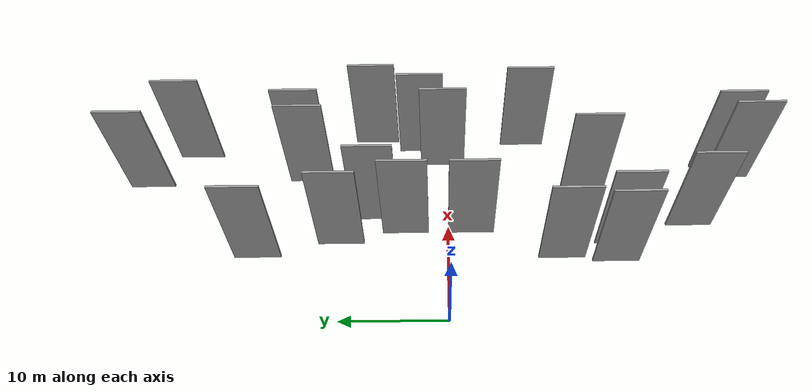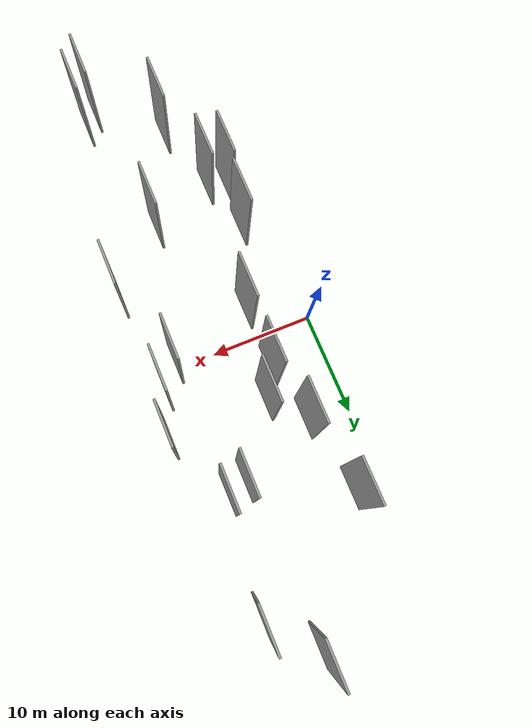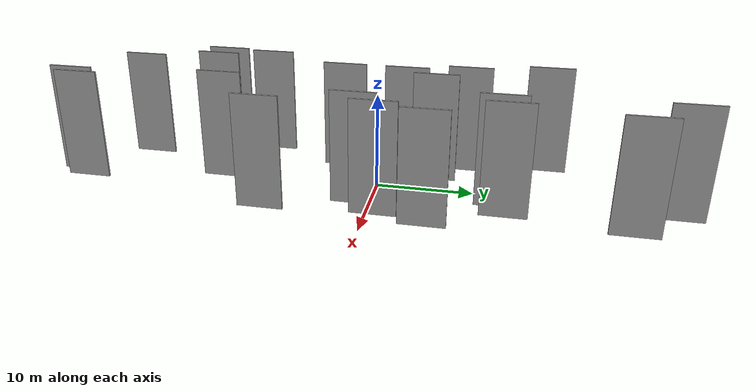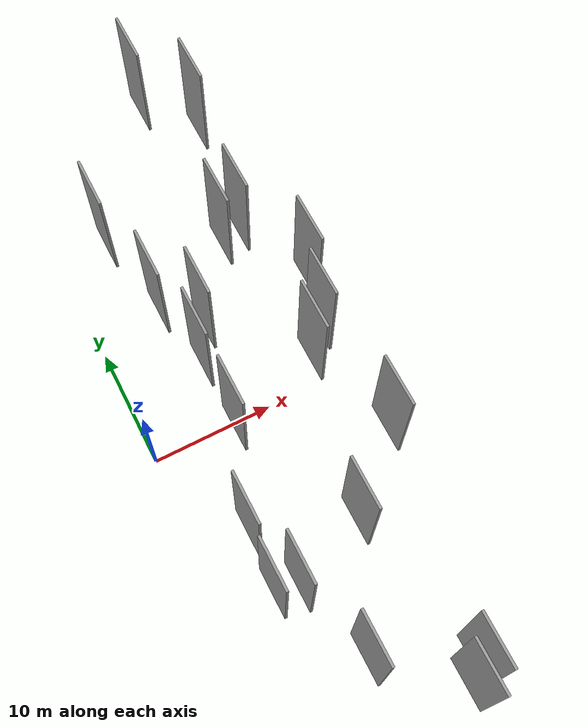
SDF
<sdf version="1.6">
 <world name="default">
  <scene>
   <sky><clouds><speed>12</speed></clouds></sky>
   <ambient>0.4 0.4 0.4 1</ambient>
   <background>0.7 0.7 0.7 1</background>
   <shadows>1</shadows>
  </scene>
  <gravity>0 0 -9.8066</gravity>
  <magnetic_field>6e-06 2.3e-05 -4.2e-05</magnetic_field>
  <physics default="0" name="default_physics" type="ode">
   <ode>
    <solver>
     <type>quick</type>
     <iters>10</iters>
     <sor>1.0</sor>
     <use_dynamic_moi_rescaling>0</use_dynamic_moi_rescaling>
    </solver>
    <constraints>
     <cfm>0</cfm>
     <erp>0.2</erp>
     <contact_max_correcting_vel>100</contact_max_correcting_vel>
     <contact_surface_layer>0.001</contact_surface_layer>
    </constraints>
   </ode>
   <max_step_size>0.004</max_step_size>
   <real_time_factor>1</real_time_factor>
   <real_time_update_rate>250</real_time_update_rate>
  </physics>
  <light name="sun" type="directional">
   <pose>0 0 10 0 0 0</pose>
   <diffuse>0.8 0.8 0.8 1</diffuse>
   <specular>0.2 0.2 0.2 1</specular>
   <attenuation>
    <range>1000</range>
    <constant>0.9</constant>
    <linear>0.01</linear>
    <quadratic>0.001</quadratic>
   </attenuation>
   <direction>-0.5 0.1 -0.9</direction>
  </light>
  <model name="grey_wall_1">
   <static>1</static>
   <pose>3.4930 -9.6182 5.0 0.000000 0.000000 1.570796</pose>
   <link name="link">
    <pose>0 0 5.00 0 0 0</pose>
    <collision name="collision"><geometry><box><size>4.00 0.2 10.00</size></box></geometry></collision>
    <visual name="visual">
     <cast_shadows>0</cast_shadows>
     <geometry><box><size>4.00 0.2 10.00</size></box></geometry>
     <material>
      <script>
       <uri>model://grey_wall/materials/scripts</uri>
       <uri>model://grey_wall/materials/textures</uri>
       <name>vrc/grey_wall</name>
      </script>
     </material>
    </visual>
   </link>
  </model>
  <model name="grey_wall_2">
   <static>1</static>
   <pose>12.1134 -25.7964 5.0 0.000000 0.000000 1.570796</pose>
   <link name="link">
    <pose>0 0 5.00 0 0 0</pose>
    <collision name="collision"><geometry><box><size>4.00 0.2 10.00</size></box></geometry></collision>
    <visual name="visual">
     <cast_shadows>0</cast_shadows>
     <geometry><box><size>4.00 0.2 10.00</size></box></geometry>
     <material>
      <script>
       <uri>model://grey_wall/materials/scripts</uri>
       <uri>model://grey_wall/materials/textures</uri>
       <name>vrc/grey_wall</name>
      </script>
     </material>
    </visual>
   </link>
  </model>
  <model name="grey_wall_3">
   <static>1</static>
   <pose>4.8987 -14.6306 5.0 0.000000 0.000000 1.570796</pose>
   <link name="link">
    <pose>0 0 5.00 0 0 0</pose>
    <collision name="collision"><geometry><box><size>4.00 0.2 10.00</size></box></geometry></collision>
    <visual name="visual">
     <cast_shadows>0</cast_shadows>
     <geometry><box><size>4.00 0.2 10.00</size></box></geometry>
     <material>
      <script>
       <uri>model://grey_wall/materials/scripts</uri>
       <uri>model://grey_wall/materials/textures</uri>
       <name>vrc/grey_wall</name>
      </script>
     </material>
    </visual>
   </link>
  </model>
  <model name="grey_wall_4">
   <static>1</static>
   <pose>15.0310 23.2108 5.0 0.000000 0.000000 1.570796</pose>
   <link name="link">
    <pose>0 0 5.00 0 0 0</pose>
    <collision name="collision"><geometry><box><size>4.00 0.2 10.00</size></box></geometry></collision>
    <visual name="visual">
     <cast_shadows>0</cast_shadows>
     <geometry><box><size>4.00 0.2 10.00</size></box></geometry>
     <material>
      <script>
       <uri>model://grey_wall/materials/scripts</uri>
       <uri>model://grey_wall/materials/textures</uri>
       <name>vrc/grey_wall</name>
      </script>
     </material>
    </visual>
   </link>
  </model>
  <model name="grey_wall_5">
   <static>1</static>
   <pose>3.1065 -14.2138 5.0 0.000000 0.000000 1.570796</pose>
   <link name="link">
    <pose>0 0 5.00 0 0 0</pose>
    <collision name="collision"><geometry><box><size>4.00 0.2 10.00</size></box></geometry></collision>
    <visual name="visual">
     <cast_shadows>0</cast_shadows>
     <geometry><box><size>4.00 0.2 10.00</size></box></geometry>
     <material>
      <script>
       <uri>model://grey_wall/materials/scripts</uri>
       <uri>model://grey_wall/materials/textures</uri>
       <name>vrc/grey_wall</name>
      </script>
     </material>
    </visual>
   </link>
  </model>
  <model name="grey_wall_6">
   <static>1</static>
   <pose>11.5362 27.1328 5.0 0.000000 0.000000 1.570796</pose>
   <link name="link">
    <pose>0 0 5.00 0 0 0</pose>
    <collision name="collision"><geometry><box><size>4.00 0.2 10.00</size></box></geometry></collision>
    <visual name="visual">
     <cast_shadows>0</cast_shadows>
     <geometry><box><size>4.00 0.2 10.00</size></box></geometry>
     <material>
      <script>
       <uri>model://grey_wall/materials/scripts</uri>
       <uri>model://grey_wall/materials/textures</uri>
       <name>vrc/grey_wall</name>
      </script>
     </material>
    </visual>
   </link>
  </model>
  <model name="grey_wall_7">
   <static>1</static>
   <pose>16.7104 6.6749 5.0 0.000000 0.000000 1.570796</pose>
   <link name="link">
    <pose>0 0 5.00 0 0 0</pose>
    <collision name="collision"><geometry><box><size>4.00 0.2 10.00</size></box></geometry></collision>
    <visual name="visual">
     <cast_shadows>0</cast_shadows>
     <geometry><box><size>4.00 0.2 10.00</size></box></geometry>
     <material>
      <script>
       <uri>model://grey_wall/materials/scripts</uri>
       <uri>model://grey_wall/materials/textures</uri>
       <name>vrc/grey_wall</name>
      </script>
     </material>
    </visual>
   </link>
  </model>
  <model name="grey_wall_8">
   <static>1</static>
   <pose>16.2765 -7.0694 5.0 0.000000 0.000000 1.570796</pose>
   <link name="link">
    <pose>0 0 5.00 0 0 0</pose>
    <collision name="collision"><geometry><box><size>4.00 0.2 10.00</size></box></geometry></collision>
    <visual name="visual">
     <cast_shadows>0</cast_shadows>
     <geometry><box><size>4.00 0.2 10.00</size></box></geometry>
     <material>
      <script>
       <uri>model://grey_wall/materials/scripts</uri>
       <uri>model://grey_wall/materials/textures</uri>
       <name>vrc/grey_wall</name>
      </script>
     </material>
    </visual>
   </link>
  </model>
  <model name="grey_wall_9">
   <static>1</static>
   <pose>6.1859 3.8183 5.0 0.000000 0.000000 1.570796</pose>
   <link name="link">
    <pose>0 0 5.00 0 0 0</pose>
    <collision name="collision"><geometry><box><size>4.00 0.2 10.00</size></box></geometry></collision>
    <visual name="visual">
     <cast_shadows>0</cast_shadows>
     <geometry><box><size>4.00 0.2 10.00</size></box></geometry>
     <material>
      <script>
       <uri>model://grey_wall/materials/scripts</uri>
       <uri>model://grey_wall/materials/textures</uri>
       <name>vrc/grey_wall</name>
      </script>
     </material>
    </visual>
   </link>
  </model>
  <model name="grey_wall_10">
   <static>1</static>
   <pose>10.8411 -12.2583 5.0 0.000000 0.000000 1.570796</pose>
   <link name="link">
    <pose>0 0 5.00 0 0 0</pose>
    <collision name="collision"><geometry><box><size>4.00 0.2 10.00</size></box></geometry></collision>
    <visual name="visual">
     <cast_shadows>0</cast_shadows>
     <geometry><box><size>4.00 0.2 10.00</size></box></geometry>
     <material>
      <script>
       <uri>model://grey_wall/materials/scripts</uri>
       <uri>model://grey_wall/materials/textures</uri>
       <name>vrc/grey_wall</name>
      </script>
     </material>
    </visual>
   </link>
  </model>
  <model name="grey_wall_11">
   <static>1</static>
   <pose>12.0717 12.5254 5.0 0.000000 0.000000 1.570796</pose>
   <link name="link">
    <pose>0 0 5.00 0 0 0</pose>
    <collision name="collision"><geometry><box><size>4.00 0.2 10.00</size></box></geometry></collision>
    <visual name="visual">
     <cast_shadows>0</cast_shadows>
     <geometry><box><size>4.00 0.2 10.00</size></box></geometry>
     <material>
      <script>
       <uri>model://grey_wall/materials/scripts</uri>
       <uri>model://grey_wall/materials/textures</uri>
       <name>vrc/grey_wall</name>
      </script>
     </material>
    </visual>
   </link>
  </model>
  <model name="grey_wall_12">
   <static>1</static>
   <pose>6.7344 -21.1685 5.0 0.000000 0.000000 1.570796</pose>
   <link name="link">
    <pose>0 0 5.00 0 0 0</pose>
    <collision name="collision"><geometry><box><size>4.00 0.2 10.00</size></box></geometry></collision>
    <visual name="visual">
     <cast_shadows>0</cast_shadows>
     <geometry><box><size>4.00 0.2 10.00</size></box></geometry>
     <material>
      <script>
       <uri>model://grey_wall/materials/scripts</uri>
       <uri>model://grey_wall/materials/textures</uri>
       <name>vrc/grey_wall</name>
      </script>
     </material>
    </visual>
   </link>
  </model>
  <model name="grey_wall_13">
   <static>1</static>
   <pose>5.1119 9.4027 5.0 0.000000 0.000000 1.570796</pose>
   <link name="link">
    <pose>0 0 5.00 0 0 0</pose>
    <collision name="collision"><geometry><box><size>4.00 0.2 10.00</size></box></geometry></collision>
    <visual name="visual">
     <cast_shadows>0</cast_shadows>
     <geometry><box><size>4.00 0.2 10.00</size></box></geometry>
     <material>
      <script>
       <uri>model://grey_wall/materials/scripts</uri>
       <uri>model://grey_wall/materials/textures</uri>
       <name>vrc/grey_wall</name>
      </script>
     </material>
    </visual>
   </link>
  </model>
  <model name="grey_wall_14">
   <static>1</static>
   <pose>7.7117 6.5904 5.0 0.000000 0.000000 1.570796</pose>
   <link name="link">
    <pose>0 0 5.00 0 0 0</pose>
    <collision name="collision"><geometry><box><size>4.00 0.2 10.00</size></box></geometry></collision>
    <visual name="visual">
     <cast_shadows>0</cast_shadows>
     <geometry><box><size>4.00 0.2 10.00</size></box></geometry>
     <material>
      <script>
       <uri>model://grey_wall/materials/scripts</uri>
       <uri>model://grey_wall/materials/textures</uri>
       <name>vrc/grey_wall</name>
      </script>
     </material>
    </visual>
   </link>
  </model>
  <model name="grey_wall_15">
   <static>1</static>
   <pose>13.8546 13.0444 5.0 0.000000 0.000000 1.570796</pose>
   <link name="link">
    <pose>0 0 5.00 0 0 0</pose>
    <collision name="collision"><geometry><box><size>4.00 0.2 10.00</size></box></geometry></collision>
    <visual name="visual">
     <cast_shadows>0</cast_shadows>
     <geometry><box><size>4.00 0.2 10.00</size></box></geometry>
     <material>
      <script>
       <uri>model://grey_wall/materials/scripts</uri>
       <uri>model://grey_wall/materials/textures</uri>
       <name>vrc/grey_wall</name>
      </script>
     </material>
    </visual>
   </link>
  </model>
  <model name="grey_wall_16">
   <static>1</static>
   <pose>13.3080 -24.6456 5.0 0.000000 0.000000 1.570796</pose>
   <link name="link">
    <pose>0 0 5.00 0 0 0</pose>
    <collision name="collision"><geometry><box><size>4.00 0.2 10.00</size></box></geometry></collision>
    <visual name="visual">
     <cast_shadows>0</cast_shadows>
     <geometry><box><size>4.00 0.2 10.00</size></box></geometry>
     <material>
      <script>
       <uri>model://grey_wall/materials/scripts</uri>
       <uri>model://grey_wall/materials/textures</uri>
       <name>vrc/grey_wall</name>
      </script>
     </material>
    </visual>
   </link>
  </model>
  <model name="grey_wall_17">
   <static>1</static>
   <pose>6.1787 -1.8883 5.0 0.000000 0.000000 1.570796</pose>
   <link name="link">
    <pose>0 0 5.00 0 0 0</pose>
    <collision name="collision"><geometry><box><size>4.00 0.2 10.00</size></box></geometry></collision>
    <visual name="visual">
     <cast_shadows>0</cast_shadows>
     <geometry><box><size>4.00 0.2 10.00</size></box></geometry>
     <material>
      <script>
       <uri>model://grey_wall/materials/scripts</uri>
       <uri>model://grey_wall/materials/textures</uri>
       <name>vrc/grey_wall</name>
      </script>
     </material>
    </visual>
   </link>
  </model>
  <model name="grey_wall_18">
   <static>1</static>
   <pose>15.5854 2.4775 5.0 0.000000 0.000000 1.570796</pose>
   <link name="link">
    <pose>0 0 5.00 0 0 0</pose>
    <collision name="collision"><geometry><box><size>4.00 0.2 10.00</size></box></geometry></collision>
    <visual name="visual">
     <cast_shadows>0</cast_shadows>
     <geometry><box><size>4.00 0.2 10.00</size></box></geometry>
     <material>
      <script>
       <uri>model://grey_wall/materials/scripts</uri>
       <uri>model://grey_wall/materials/textures</uri>
       <name>vrc/grey_wall</name>
      </script>
     </material>
    </visual>
   </link>
  </model>
  <model name="grey_wall_19">
   <static>1</static>
   <pose>3.7999 16.4916 5.0 0.000000 0.000000 1.570796</pose>
   <link name="link">
    <pose>0 0 5.00 0 0 0</pose>
    <collision name="collision"><geometry><box><size>4.00 0.2 10.00</size></box></geometry></collision>
    <visual name="visual">
     <cast_shadows>0</cast_shadows>
     <geometry><box><size>4.00 0.2 10.00</size></box></geometry>
     <material>
      <script>
       <uri>model://grey_wall/materials/scripts</uri>
       <uri>model://grey_wall/materials/textures</uri>
       <name>vrc/grey_wall</name>
      </script>
     </material>
    </visual>
   </link>
  </model>
  <model name="grey_wall_20">
   <static>1</static>
   <pose>13.8479 0.5052 5.0 0.000000 0.000000 1.570796</pose>
   <link name="link">
    <pose>0 0 5.00 0 0 0</pose>
    <collision name="collision"><geometry><box><size>4.00 0.2 10.00</size></box></geometry></collision>
    <visual name="visual">
     <cast_shadows>0</cast_shadows>
     <geometry><box><size>4.00 0.2 10.00</size></box></geometry>
     <material>
      <script>
       <uri>model://grey_wall/materials/scripts</uri>
       <uri>model://grey_wall/materials/textures</uri>
       <name>vrc/grey_wall</name>
      </script>
     </material>
    </visual>
   </link>
  </model>
 </world>
</sdf>
